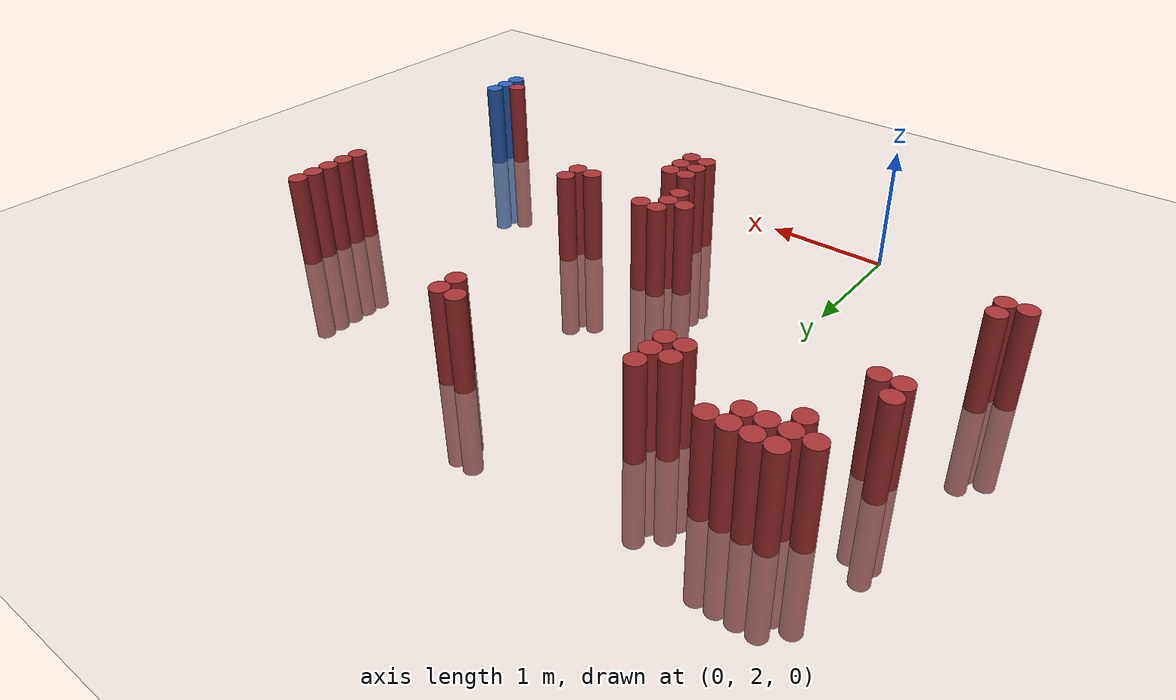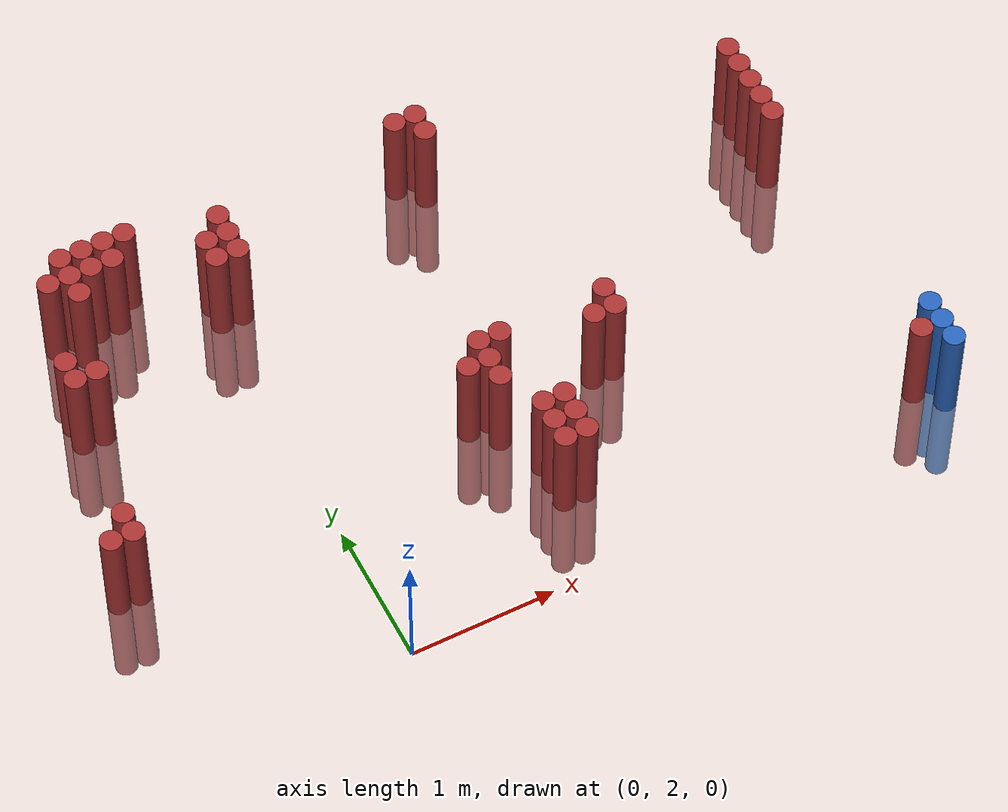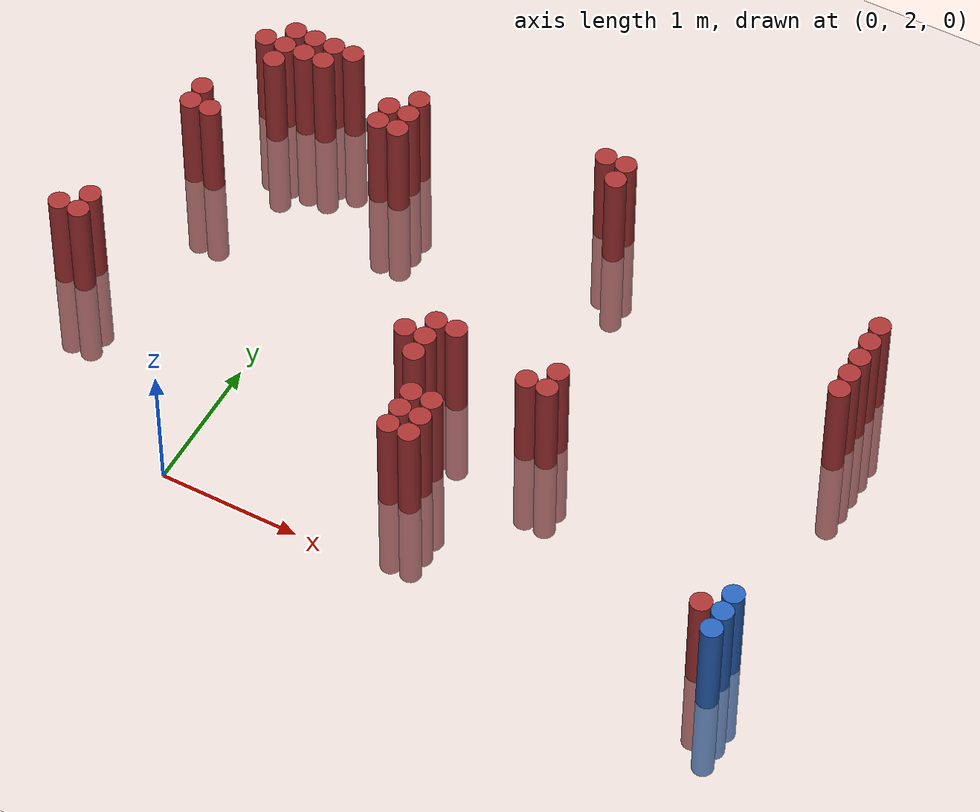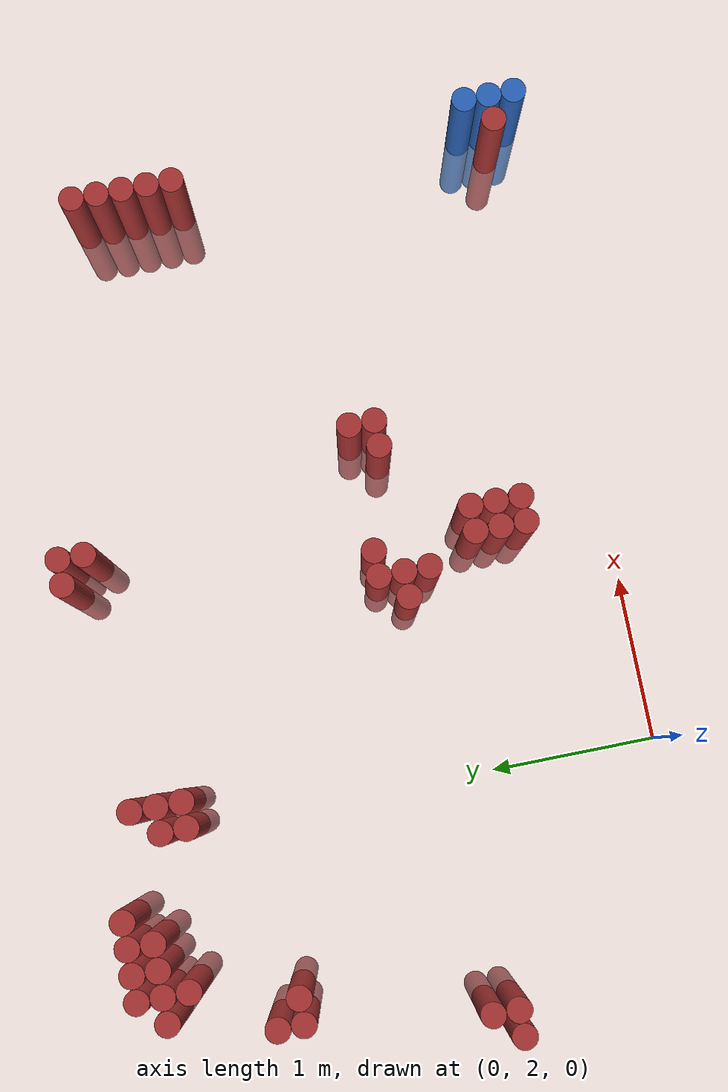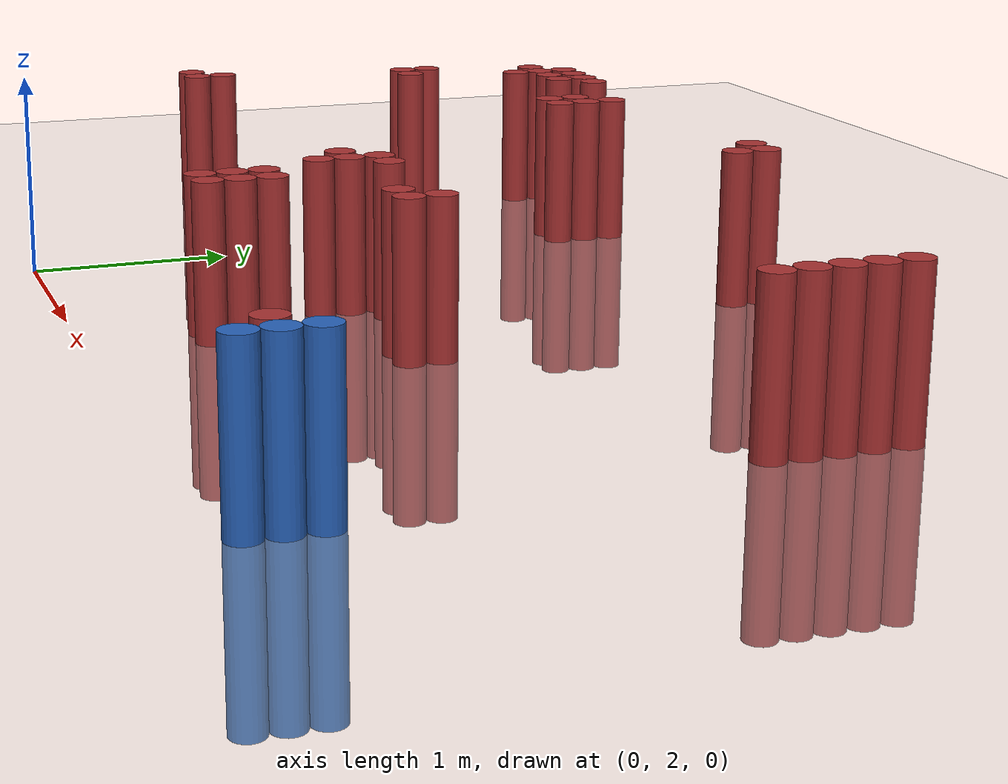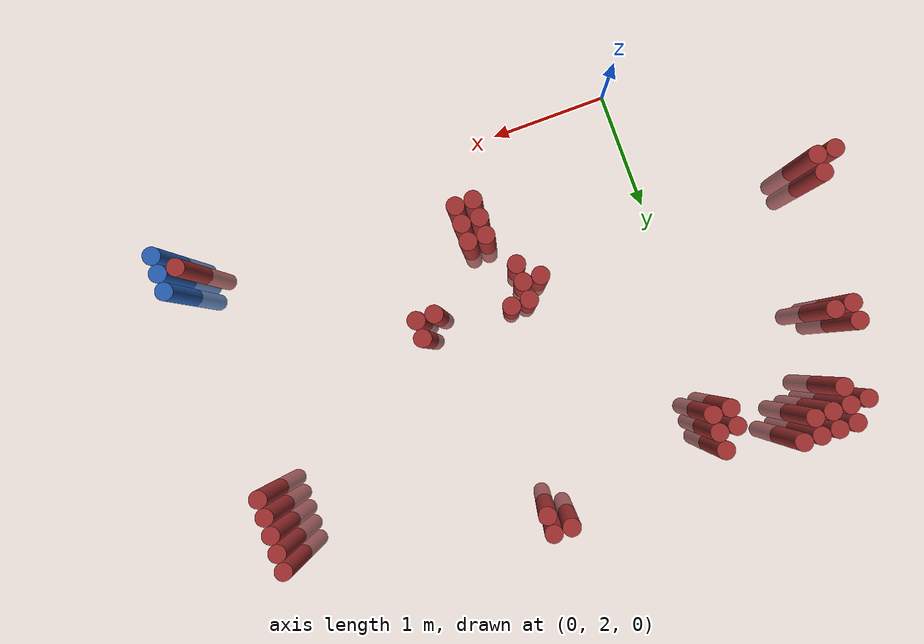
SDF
<sdf version="1.6">
 <world name="default">
  <model name="ground_plane">
   <static>1</static>
   <link name="link">
    <collision name="collision">
     <geometry><plane><normal>0 0 1</normal><size>100 100</size></plane></geometry>
     <surface><friction><ode><mu>100</mu><mu2>50</mu2></ode></friction></surface>
    </collision>
    <visual name="visual">
     <cast_shadows>0</cast_shadows>
     <geometry><plane><normal>0 0 1</normal><size>100 100</size></plane></geometry>
     <material>
      <script><uri>file://media/materials/scripts/gazebo.material</uri><name>Gazebo/Grey</name></script>
     </material>
    </visual>
   </link>
  </model>
  <model name="unit_cylinder_142">
   <static>1</static>
   <pose>3.925000 2.125000 0.000000 0.000000 0.000000 0.000000</pose>
   <link name="link">
    <inertial>
     <mass>1</mass>
     <inertia><ixx>0.145833</ixx><ixy>0</ixy><ixz>0</ixz><iyy>0.145833</iyy><iyz>0</iyz><izz>0.125</izz></inertia>
    </inertial>
    <collision name="collision">
     <geometry><cylinder><radius>0.075000</radius><length>1.5</length></cylinder></geometry>
    </collision>
    <visual name="visual">
     <geometry><cylinder><radius>0.075000</radius><length>1.5</length></cylinder></geometry>
     <material>
      <ambient>0.152000 0.379000 0.720000 1</ambient>
      <diffuse>0.152000 0.379000 0.720000 1</diffuse>
     </material>
     <material>
      <script><name>Gazebo/Grey</name><uri>file://media/materials/scripts/gazebo.material</uri></script>
     </material>
    </visual>
   </link>
  </model>
  <model name="unit_cylinder_144">
   <static>1</static>
   <pose>3.925000 2.275000 0.000000 0.000000 0.000000 0.000000</pose>
   <link name="link">
    <inertial>
     <mass>1</mass>
     <inertia><ixx>0.145833</ixx><ixy>0</ixy><ixz>0</ixz><iyy>0.145833</iyy><iyz>0</iyz><izz>0.125</izz></inertia>
    </inertial>
    <collision name="collision">
     <geometry><cylinder><radius>0.075000</radius><length>1.5</length></cylinder></geometry>
    </collision>
    <visual name="visual">
     <geometry><cylinder><radius>0.075000</radius><length>1.5</length></cylinder></geometry>
     <material>
      <ambient>0.152000 0.379000 0.720000 1</ambient>
      <diffuse>0.152000 0.379000 0.720000 1</diffuse>
     </material>
     <material>
      <script><name>Gazebo/Grey</name><uri>file://media/materials/scripts/gazebo.material</uri></script>
     </material>
    </visual>
   </link>
  </model>
  <model name="unit_cylinder_146">
   <static>1</static>
   <pose>3.925000 2.425000 0.000000 0.000000 0.000000 0.000000</pose>
   <link name="link">
    <inertial>
     <mass>1</mass>
     <inertia><ixx>0.145833</ixx><ixy>0</ixy><ixz>0</ixz><iyy>0.145833</iyy><iyz>0</iyz><izz>0.125</izz></inertia>
    </inertial>
    <collision name="collision">
     <geometry><cylinder><radius>0.075000</radius><length>1.5</length></cylinder></geometry>
    </collision>
    <visual name="visual">
     <geometry><cylinder><radius>0.075000</radius><length>1.5</length></cylinder></geometry>
     <material>
      <ambient>0.152000 0.379000 0.720000 1</ambient>
      <diffuse>0.152000 0.379000 0.720000 1</diffuse>
     </material>
     <material>
      <script><name>Gazebo/Grey</name><uri>file://media/materials/scripts/gazebo.material</uri></script>
     </material>
    </visual>
   </link>
  </model>
  <model name="unit_cylinder_287">
   <static>1</static>
   <pose>-1.475000 3.175000 0.000000 0.000000 0.000000 0.000000</pose>
   <link name="link">
    <inertial>
     <mass>1</mass>
     <inertia><ixx>0.145833</ixx><ixy>0</ixy><ixz>0</ixz><iyy>0.145833</iyy><iyz>0</iyz><izz>0.125</izz></inertia>
    </inertial>
    <collision name="collision">
     <geometry><cylinder><radius>0.075000</radius><length>1.5</length></cylinder></geometry>
    </collision>
    <visual name="visual">
     <geometry><cylinder><radius>0.075000</radius><length>1.5</length></cylinder></geometry>
     <material>
      <ambient>0.648000 0.192000 0.192000 1</ambient>
      <diffuse>0.648000 0.192000 0.192000 1</diffuse>
     </material>
     <material>
      <script><name>Gazebo/Grey</name><uri>file://media/materials/scripts/gazebo.material</uri></script>
     </material>
    </visual>
   </link>
  </model>
  <model name="unit_cylinder_289">
   <static>1</static>
   <pose>-1.325000 3.175000 0.000000 0.000000 0.000000 0.000000</pose>
   <link name="link">
    <inertial>
     <mass>1</mass>
     <inertia><ixx>0.145833</ixx><ixy>0</ixy><ixz>0</ixz><iyy>0.145833</iyy><iyz>0</iyz><izz>0.125</izz></inertia>
    </inertial>
    <collision name="collision">
     <geometry><cylinder><radius>0.075000</radius><length>1.5</length></cylinder></geometry>
    </collision>
    <visual name="visual">
     <geometry><cylinder><radius>0.075000</radius><length>1.5</length></cylinder></geometry>
     <material>
      <ambient>0.648000 0.192000 0.192000 1</ambient>
      <diffuse>0.648000 0.192000 0.192000 1</diffuse>
     </material>
     <material>
      <script><name>Gazebo/Grey</name><uri>file://media/materials/scripts/gazebo.material</uri></script>
     </material>
    </visual>
   </link>
  </model>
  <model name="unit_cylinder_290">
   <static>1</static>
   <pose>-1.325000 3.325000 0.000000 0.000000 0.000000 0.000000</pose>
   <link name="link">
    <inertial>
     <mass>1</mass>
     <inertia><ixx>0.145833</ixx><ixy>0</ixy><ixz>0</ixz><iyy>0.145833</iyy><iyz>0</iyz><izz>0.125</izz></inertia>
    </inertial>
    <collision name="collision">
     <geometry><cylinder><radius>0.075000</radius><length>1.5</length></cylinder></geometry>
    </collision>
    <visual name="visual">
     <geometry><cylinder><radius>0.075000</radius><length>1.5</length></cylinder></geometry>
     <material>
      <ambient>0.648000 0.192000 0.192000 1</ambient>
      <diffuse>0.648000 0.192000 0.192000 1</diffuse>
     </material>
     <material>
      <script><name>Gazebo/Grey</name><uri>file://media/materials/scripts/gazebo.material</uri></script>
     </material>
    </visual>
   </link>
  </model>
  <model name="unit_cylinder_293">
   <static>1</static>
   <pose>-1.175000 4.375000 0.000000 0.000000 0.000000 0.000000</pose>
   <link name="link">
    <inertial>
     <mass>1</mass>
     <inertia><ixx>0.145833</ixx><ixy>0</ixy><ixz>0</ixz><iyy>0.145833</iyy><iyz>0</iyz><izz>0.125</izz></inertia>
    </inertial>
    <collision name="collision">
     <geometry><cylinder><radius>0.075000</radius><length>1.5</length></cylinder></geometry>
    </collision>
    <visual name="visual">
     <geometry><cylinder><radius>0.075000</radius><length>1.5</length></cylinder></geometry>
     <material>
      <ambient>0.648000 0.192000 0.192000 1</ambient>
      <diffuse>0.648000 0.192000 0.192000 1</diffuse>
     </material>
     <material>
      <script><name>Gazebo/Grey</name><uri>file://media/materials/scripts/gazebo.material</uri></script>
     </material>
    </visual>
   </link>
  </model>
  <model name="unit_cylinder_294">
   <static>1</static>
   <pose>-1.175000 4.525000 0.000000 0.000000 0.000000 0.000000</pose>
   <link name="link">
    <inertial>
     <mass>1</mass>
     <inertia><ixx>0.145833</ixx><ixy>0</ixy><ixz>0</ixz><iyy>0.145833</iyy><iyz>0</iyz><izz>0.125</izz></inertia>
    </inertial>
    <collision name="collision">
     <geometry><cylinder><radius>0.075000</radius><length>1.5</length></cylinder></geometry>
    </collision>
    <visual name="visual">
     <geometry><cylinder><radius>0.075000</radius><length>1.5</length></cylinder></geometry>
     <material>
      <ambient>0.648000 0.192000 0.192000 1</ambient>
      <diffuse>0.648000 0.192000 0.192000 1</diffuse>
     </material>
     <material>
      <script><name>Gazebo/Grey</name><uri>file://media/materials/scripts/gazebo.material</uri></script>
     </material>
    </visual>
   </link>
  </model>
  <model name="unit_cylinder_298">
   <static>1</static>
   <pose>-1.025000 4.375000 0.000000 0.000000 0.000000 0.000000</pose>
   <link name="link">
    <inertial>
     <mass>1</mass>
     <inertia><ixx>0.145833</ixx><ixy>0</ixy><ixz>0</ixz><iyy>0.145833</iyy><iyz>0</iyz><izz>0.125</izz></inertia>
    </inertial>
    <collision name="collision">
     <geometry><cylinder><radius>0.075000</radius><length>1.5</length></cylinder></geometry>
    </collision>
    <visual name="visual">
     <geometry><cylinder><radius>0.075000</radius><length>1.5</length></cylinder></geometry>
     <material>
      <ambient>0.648000 0.192000 0.192000 1</ambient>
      <diffuse>0.648000 0.192000 0.192000 1</diffuse>
     </material>
     <material>
      <script><name>Gazebo/Grey</name><uri>file://media/materials/scripts/gazebo.material</uri></script>
     </material>
    </visual>
   </link>
  </model>
  <model name="unit_cylinder_299">
   <static>1</static>
   <pose>-1.025000 5.125000 0.000000 0.000000 0.000000 0.000000</pose>
   <link name="link">
    <inertial>
     <mass>1</mass>
     <inertia><ixx>0.145833</ixx><ixy>0</ixy><ixz>0</ixz><iyy>0.145833</iyy><iyz>0</iyz><izz>0.125</izz></inertia>
    </inertial>
    <collision name="collision">
     <geometry><cylinder><radius>0.075000</radius><length>1.5</length></cylinder></geometry>
    </collision>
    <visual name="visual">
     <geometry><cylinder><radius>0.075000</radius><length>1.5</length></cylinder></geometry>
     <material>
      <ambient>0.648000 0.192000 0.192000 1</ambient>
      <diffuse>0.648000 0.192000 0.192000 1</diffuse>
     </material>
     <material>
      <script><name>Gazebo/Grey</name><uri>file://media/materials/scripts/gazebo.material</uri></script>
     </material>
    </visual>
   </link>
  </model>
  <model name="unit_cylinder_303">
   <static>1</static>
   <pose>-0.875000 4.975000 0.000000 0.000000 0.000000 0.000000</pose>
   <link name="link">
    <inertial>
     <mass>1</mass>
     <inertia><ixx>0.145833</ixx><ixy>0</ixy><ixz>0</ixz><iyy>0.145833</iyy><iyz>0</iyz><izz>0.125</izz></inertia>
    </inertial>
    <collision name="collision">
     <geometry><cylinder><radius>0.075000</radius><length>1.5</length></cylinder></geometry>
    </collision>
    <visual name="visual">
     <geometry><cylinder><radius>0.075000</radius><length>1.5</length></cylinder></geometry>
     <material>
      <ambient>0.648000 0.192000 0.192000 1</ambient>
      <diffuse>0.648000 0.192000 0.192000 1</diffuse>
     </material>
     <material>
      <script><name>Gazebo/Grey</name><uri>file://media/materials/scripts/gazebo.material</uri></script>
     </material>
    </visual>
   </link>
  </model>
  <model name="unit_cylinder_304">
   <static>1</static>
   <pose>-0.875000 5.125000 0.000000 0.000000 0.000000 0.000000</pose>
   <link name="link">
    <inertial>
     <mass>1</mass>
     <inertia><ixx>0.145833</ixx><ixy>0</ixy><ixz>0</ixz><iyy>0.145833</iyy><iyz>0</iyz><izz>0.125</izz></inertia>
    </inertial>
    <collision name="collision">
     <geometry><cylinder><radius>0.075000</radius><length>1.5</length></cylinder></geometry>
    </collision>
    <visual name="visual">
     <geometry><cylinder><radius>0.075000</radius><length>1.5</length></cylinder></geometry>
     <material>
      <ambient>0.648000 0.192000 0.192000 1</ambient>
      <diffuse>0.648000 0.192000 0.192000 1</diffuse>
     </material>
     <material>
      <script><name>Gazebo/Grey</name><uri>file://media/materials/scripts/gazebo.material</uri></script>
     </material>
    </visual>
   </link>
  </model>
  <model name="unit_cylinder_305">
   <static>1</static>
   <pose>-0.875000 5.275000 0.000000 0.000000 0.000000 0.000000</pose>
   <link name="link">
    <inertial>
     <mass>1</mass>
     <inertia><ixx>0.145833</ixx><ixy>0</ixy><ixz>0</ixz><iyy>0.145833</iyy><iyz>0</iyz><izz>0.125</izz></inertia>
    </inertial>
    <collision name="collision">
     <geometry><cylinder><radius>0.075000</radius><length>1.5</length></cylinder></geometry>
    </collision>
    <visual name="visual">
     <geometry><cylinder><radius>0.075000</radius><length>1.5</length></cylinder></geometry>
     <material>
      <ambient>0.648000 0.192000 0.192000 1</ambient>
      <diffuse>0.648000 0.192000 0.192000 1</diffuse>
     </material>
     <material>
      <script><name>Gazebo/Grey</name><uri>file://media/materials/scripts/gazebo.material</uri></script>
     </material>
    </visual>
   </link>
  </model>
  <model name="unit_cylinder_306">
   <static>1</static>
   <pose>-0.725000 5.125000 0.000000 0.000000 0.000000 0.000000</pose>
   <link name="link">
    <inertial>
     <mass>1</mass>
     <inertia><ixx>0.145833</ixx><ixy>0</ixy><ixz>0</ixz><iyy>0.145833</iyy><iyz>0</iyz><izz>0.125</izz></inertia>
    </inertial>
    <collision name="collision">
     <geometry><cylinder><radius>0.075000</radius><length>1.5</length></cylinder></geometry>
    </collision>
    <visual name="visual">
     <geometry><cylinder><radius>0.075000</radius><length>1.5</length></cylinder></geometry>
     <material>
      <ambient>0.648000 0.192000 0.192000 1</ambient>
      <diffuse>0.648000 0.192000 0.192000 1</diffuse>
     </material>
     <material>
      <script><name>Gazebo/Grey</name><uri>file://media/materials/scripts/gazebo.material</uri></script>
     </material>
    </visual>
   </link>
  </model>
  <model name="unit_cylinder_307">
   <static>1</static>
   <pose>-0.725000 5.275000 0.000000 0.000000 0.000000 0.000000</pose>
   <link name="link">
    <inertial>
     <mass>1</mass>
     <inertia><ixx>0.145833</ixx><ixy>0</ixy><ixz>0</ixz><iyy>0.145833</iyy><iyz>0</iyz><izz>0.125</izz></inertia>
    </inertial>
    <collision name="collision">
     <geometry><cylinder><radius>0.075000</radius><length>1.5</length></cylinder></geometry>
    </collision>
    <visual name="visual">
     <geometry><cylinder><radius>0.075000</radius><length>1.5</length></cylinder></geometry>
     <material>
      <ambient>0.648000 0.192000 0.192000 1</ambient>
      <diffuse>0.648000 0.192000 0.192000 1</diffuse>
     </material>
     <material>
      <script><name>Gazebo/Grey</name><uri>file://media/materials/scripts/gazebo.material</uri></script>
     </material>
    </visual>
   </link>
  </model>
  <model name="unit_cylinder_308">
   <static>1</static>
   <pose>-0.575000 5.125000 0.000000 0.000000 0.000000 0.000000</pose>
   <link name="link">
    <inertial>
     <mass>1</mass>
     <inertia><ixx>0.145833</ixx><ixy>0</ixy><ixz>0</ixz><iyy>0.145833</iyy><iyz>0</iyz><izz>0.125</izz></inertia>
    </inertial>
    <collision name="collision">
     <geometry><cylinder><radius>0.075000</radius><length>1.5</length></cylinder></geometry>
    </collision>
    <visual name="visual">
     <geometry><cylinder><radius>0.075000</radius><length>1.5</length></cylinder></geometry>
     <material>
      <ambient>0.648000 0.192000 0.192000 1</ambient>
      <diffuse>0.648000 0.192000 0.192000 1</diffuse>
     </material>
     <material>
      <script><name>Gazebo/Grey</name><uri>file://media/materials/scripts/gazebo.material</uri></script>
     </material>
    </visual>
   </link>
  </model>
  <model name="unit_cylinder_309">
   <static>1</static>
   <pose>-0.575000 5.275000 0.000000 0.000000 0.000000 0.000000</pose>
   <link name="link">
    <inertial>
     <mass>1</mass>
     <inertia><ixx>0.145833</ixx><ixy>0</ixy><ixz>0</ixz><iyy>0.145833</iyy><iyz>0</iyz><izz>0.125</izz></inertia>
    </inertial>
    <collision name="collision">
     <geometry><cylinder><radius>0.075000</radius><length>1.5</length></cylinder></geometry>
    </collision>
    <visual name="visual">
     <geometry><cylinder><radius>0.075000</radius><length>1.5</length></cylinder></geometry>
     <material>
      <ambient>0.648000 0.192000 0.192000 1</ambient>
      <diffuse>0.648000 0.192000 0.192000 1</diffuse>
     </material>
     <material>
      <script><name>Gazebo/Grey</name><uri>file://media/materials/scripts/gazebo.material</uri></script>
     </material>
    </visual>
   </link>
  </model>
  <model name="unit_cylinder_310">
   <static>1</static>
   <pose>-0.425000 5.275000 0.000000 0.000000 0.000000 0.000000</pose>
   <link name="link">
    <inertial>
     <mass>1</mass>
     <inertia><ixx>0.145833</ixx><ixy>0</ixy><ixz>0</ixz><iyy>0.145833</iyy><iyz>0</iyz><izz>0.125</izz></inertia>
    </inertial>
    <collision name="collision">
     <geometry><cylinder><radius>0.075000</radius><length>1.5</length></cylinder></geometry>
    </collision>
    <visual name="visual">
     <geometry><cylinder><radius>0.075000</radius><length>1.5</length></cylinder></geometry>
     <material>
      <ambient>0.648000 0.192000 0.192000 1</ambient>
      <diffuse>0.648000 0.192000 0.192000 1</diffuse>
     </material>
     <material>
      <script><name>Gazebo/Grey</name><uri>file://media/materials/scripts/gazebo.material</uri></script>
     </material>
    </visual>
   </link>
  </model>
  <model name="unit_cylinder_311">
   <static>1</static>
   <pose>0.025000 4.825000 0.000000 0.000000 0.000000 0.000000</pose>
   <link name="link">
    <inertial>
     <mass>1</mass>
     <inertia><ixx>0.145833</ixx><ixy>0</ixy><ixz>0</ixz><iyy>0.145833</iyy><iyz>0</iyz><izz>0.125</izz></inertia>
    </inertial>
    <collision name="collision">
     <geometry><cylinder><radius>0.075000</radius><length>1.5</length></cylinder></geometry>
    </collision>
    <visual name="visual">
     <geometry><cylinder><radius>0.075000</radius><length>1.5</length></cylinder></geometry>
     <material>
      <ambient>0.648000 0.192000 0.192000 1</ambient>
      <diffuse>0.648000 0.192000 0.192000 1</diffuse>
     </material>
     <material>
      <script><name>Gazebo/Grey</name><uri>file://media/materials/scripts/gazebo.material</uri></script>
     </material>
    </visual>
   </link>
  </model>
  <model name="unit_cylinder_312">
   <static>1</static>
   <pose>0.025000 4.975000 0.000000 0.000000 0.000000 0.000000</pose>
   <link name="link">
    <inertial>
     <mass>1</mass>
     <inertia><ixx>0.145833</ixx><ixy>0</ixy><ixz>0</ixz><iyy>0.145833</iyy><iyz>0</iyz><izz>0.125</izz></inertia>
    </inertial>
    <collision name="collision">
     <geometry><cylinder><radius>0.075000</radius><length>1.5</length></cylinder></geometry>
    </collision>
    <visual name="visual">
     <geometry><cylinder><radius>0.075000</radius><length>1.5</length></cylinder></geometry>
     <material>
      <ambient>0.648000 0.192000 0.192000 1</ambient>
      <diffuse>0.648000 0.192000 0.192000 1</diffuse>
     </material>
     <material>
      <script><name>Gazebo/Grey</name><uri>file://media/materials/scripts/gazebo.material</uri></script>
     </material>
    </visual>
   </link>
  </model>
  <model name="unit_cylinder_313">
   <static>1</static>
   <pose>0.175000 4.825000 0.000000 0.000000 0.000000 0.000000</pose>
   <link name="link">
    <inertial>
     <mass>1</mass>
     <inertia><ixx>0.145833</ixx><ixy>0</ixy><ixz>0</ixz><iyy>0.145833</iyy><iyz>0</iyz><izz>0.125</izz></inertia>
    </inertial>
    <collision name="collision">
     <geometry><cylinder><radius>0.075000</radius><length>1.5</length></cylinder></geometry>
    </collision>
    <visual name="visual">
     <geometry><cylinder><radius>0.075000</radius><length>1.5</length></cylinder></geometry>
     <material>
      <ambient>0.648000 0.192000 0.192000 1</ambient>
      <diffuse>0.648000 0.192000 0.192000 1</diffuse>
     </material>
     <material>
      <script><name>Gazebo/Grey</name><uri>file://media/materials/scripts/gazebo.material</uri></script>
     </material>
    </visual>
   </link>
  </model>
  <model name="unit_cylinder_314">
   <static>1</static>
   <pose>0.175000 4.975000 0.000000 0.000000 0.000000 0.000000</pose>
   <link name="link">
    <inertial>
     <mass>1</mass>
     <inertia><ixx>0.145833</ixx><ixy>0</ixy><ixz>0</ixz><iyy>0.145833</iyy><iyz>0</iyz><izz>0.125</izz></inertia>
    </inertial>
    <collision name="collision">
     <geometry><cylinder><radius>0.075000</radius><length>1.5</length></cylinder></geometry>
    </collision>
    <visual name="visual">
     <geometry><cylinder><radius>0.075000</radius><length>1.5</length></cylinder></geometry>
     <material>
      <ambient>0.648000 0.192000 0.192000 1</ambient>
      <diffuse>0.648000 0.192000 0.192000 1</diffuse>
     </material>
     <material>
      <script><name>Gazebo/Grey</name><uri>file://media/materials/scripts/gazebo.material</uri></script>
     </material>
    </visual>
   </link>
  </model>
  <model name="unit_cylinder_315">
   <static>1</static>
   <pose>0.175000 5.125000 0.000000 0.000000 0.000000 0.000000</pose>
   <link name="link">
    <inertial>
     <mass>1</mass>
     <inertia><ixx>0.145833</ixx><ixy>0</ixy><ixz>0</ixz><iyy>0.145833</iyy><iyz>0</iyz><izz>0.125</izz></inertia>
    </inertial>
    <collision name="collision">
     <geometry><cylinder><radius>0.075000</radius><length>1.5</length></cylinder></geometry>
    </collision>
    <visual name="visual">
     <geometry><cylinder><radius>0.075000</radius><length>1.5</length></cylinder></geometry>
     <material>
      <ambient>0.648000 0.192000 0.192000 1</ambient>
      <diffuse>0.648000 0.192000 0.192000 1</diffuse>
     </material>
     <material>
      <script><name>Gazebo/Grey</name><uri>file://media/materials/scripts/gazebo.material</uri></script>
     </material>
    </visual>
   </link>
  </model>
  <model name="unit_cylinder_321">
   <static>1</static>
   <pose>1.075000 3.325000 0.000000 0.000000 0.000000 0.000000</pose>
   <link name="link">
    <inertial>
     <mass>1</mass>
     <inertia><ixx>0.145833</ixx><ixy>0</ixy><ixz>0</ixz><iyy>0.145833</iyy><iyz>0</iyz><izz>0.125</izz></inertia>
    </inertial>
    <collision name="collision">
     <geometry><cylinder><radius>0.075000</radius><length>1.5</length></cylinder></geometry>
    </collision>
    <visual name="visual">
     <geometry><cylinder><radius>0.075000</radius><length>1.5</length></cylinder></geometry>
     <material>
      <ambient>0.648000 0.192000 0.192000 1</ambient>
      <diffuse>0.648000 0.192000 0.192000 1</diffuse>
     </material>
     <material>
      <script><name>Gazebo/Grey</name><uri>file://media/materials/scripts/gazebo.material</uri></script>
     </material>
    </visual>
   </link>
  </model>
  <model name="unit_cylinder_325">
   <static>1</static>
   <pose>1.225000 3.175000 0.000000 0.000000 0.000000 0.000000</pose>
   <link name="link">
    <inertial>
     <mass>1</mass>
     <inertia><ixx>0.145833</ixx><ixy>0</ixy><ixz>0</ixz><iyy>0.145833</iyy><iyz>0</iyz><izz>0.125</izz></inertia>
    </inertial>
    <collision name="collision">
     <geometry><cylinder><radius>0.075000</radius><length>1.5</length></cylinder></geometry>
    </collision>
    <visual name="visual">
     <geometry><cylinder><radius>0.075000</radius><length>1.5</length></cylinder></geometry>
     <material>
      <ambient>0.648000 0.192000 0.192000 1</ambient>
      <diffuse>0.648000 0.192000 0.192000 1</diffuse>
     </material>
     <material>
      <script><name>Gazebo/Grey</name><uri>file://media/materials/scripts/gazebo.material</uri></script>
     </material>
    </visual>
   </link>
  </model>
  <model name="unit_cylinder_326">
   <static>1</static>
   <pose>1.225000 3.325000 0.000000 0.000000 0.000000 0.000000</pose>
   <link name="link">
    <inertial>
     <mass>1</mass>
     <inertia><ixx>0.145833</ixx><ixy>0</ixy><ixz>0</ixz><iyy>0.145833</iyy><iyz>0</iyz><izz>0.125</izz></inertia>
    </inertial>
    <collision name="collision">
     <geometry><cylinder><radius>0.075000</radius><length>1.5</length></cylinder></geometry>
    </collision>
    <visual name="visual">
     <geometry><cylinder><radius>0.075000</radius><length>1.5</length></cylinder></geometry>
     <material>
      <ambient>0.648000 0.192000 0.192000 1</ambient>
      <diffuse>0.648000 0.192000 0.192000 1</diffuse>
     </material>
     <material>
      <script><name>Gazebo/Grey</name><uri>file://media/materials/scripts/gazebo.material</uri></script>
     </material>
    </visual>
   </link>
  </model>
  <model name="unit_cylinder_327">
   <static>1</static>
   <pose>1.225000 3.475000 0.000000 0.000000 0.000000 0.000000</pose>
   <link name="link">
    <inertial>
     <mass>1</mass>
     <inertia><ixx>0.145833</ixx><ixy>0</ixy><ixz>0</ixz><iyy>0.145833</iyy><iyz>0</iyz><izz>0.125</izz></inertia>
    </inertial>
    <collision name="collision">
     <geometry><cylinder><radius>0.075000</radius><length>1.5</length></cylinder></geometry>
    </collision>
    <visual name="visual">
     <geometry><cylinder><radius>0.075000</radius><length>1.5</length></cylinder></geometry>
     <material>
      <ambient>0.648000 0.192000 0.192000 1</ambient>
      <diffuse>0.648000 0.192000 0.192000 1</diffuse>
     </material>
     <material>
      <script><name>Gazebo/Grey</name><uri>file://media/materials/scripts/gazebo.material</uri></script>
     </material>
    </visual>
   </link>
  </model>
  <model name="unit_cylinder_333">
   <static>1</static>
   <pose>1.375000 2.575000 0.000000 0.000000 0.000000 0.000000</pose>
   <link name="link">
    <inertial>
     <mass>1</mass>
     <inertia><ixx>0.145833</ixx><ixy>0</ixy><ixz>0</ixz><iyy>0.145833</iyy><iyz>0</iyz><izz>0.125</izz></inertia>
    </inertial>
    <collision name="collision">
     <geometry><cylinder><radius>0.075000</radius><length>1.5</length></cylinder></geometry>
    </collision>
    <visual name="visual">
     <geometry><cylinder><radius>0.075000</radius><length>1.5</length></cylinder></geometry>
     <material>
      <ambient>0.648000 0.192000 0.192000 1</ambient>
      <diffuse>0.648000 0.192000 0.192000 1</diffuse>
     </material>
     <material>
      <script><name>Gazebo/Grey</name><uri>file://media/materials/scripts/gazebo.material</uri></script>
     </material>
    </visual>
   </link>
  </model>
  <model name="unit_cylinder_334">
   <static>1</static>
   <pose>1.375000 2.725000 0.000000 0.000000 0.000000 0.000000</pose>
   <link name="link">
    <inertial>
     <mass>1</mass>
     <inertia><ixx>0.145833</ixx><ixy>0</ixy><ixz>0</ixz><iyy>0.145833</iyy><iyz>0</iyz><izz>0.125</izz></inertia>
    </inertial>
    <collision name="collision">
     <geometry><cylinder><radius>0.075000</radius><length>1.5</length></cylinder></geometry>
    </collision>
    <visual name="visual">
     <geometry><cylinder><radius>0.075000</radius><length>1.5</length></cylinder></geometry>
     <material>
      <ambient>0.648000 0.192000 0.192000 1</ambient>
      <diffuse>0.648000 0.192000 0.192000 1</diffuse>
     </material>
     <material>
      <script><name>Gazebo/Grey</name><uri>file://media/materials/scripts/gazebo.material</uri></script>
     </material>
    </visual>
   </link>
  </model>
  <model name="unit_cylinder_335">
   <static>1</static>
   <pose>1.375000 2.875000 0.000000 0.000000 0.000000 0.000000</pose>
   <link name="link">
    <inertial>
     <mass>1</mass>
     <inertia><ixx>0.145833</ixx><ixy>0</ixy><ixz>0</ixz><iyy>0.145833</iyy><iyz>0</iyz><izz>0.125</izz></inertia>
    </inertial>
    <collision name="collision">
     <geometry><cylinder><radius>0.075000</radius><length>1.5</length></cylinder></geometry>
    </collision>
    <visual name="visual">
     <geometry><cylinder><radius>0.075000</radius><length>1.5</length></cylinder></geometry>
     <material>
      <ambient>0.648000 0.192000 0.192000 1</ambient>
      <diffuse>0.648000 0.192000 0.192000 1</diffuse>
     </material>
     <material>
      <script><name>Gazebo/Grey</name><uri>file://media/materials/scripts/gazebo.material</uri></script>
     </material>
    </visual>
   </link>
  </model>
  <model name="unit_cylinder_336">
   <static>1</static>
   <pose>1.375000 3.475000 0.000000 0.000000 0.000000 0.000000</pose>
   <link name="link">
    <inertial>
     <mass>1</mass>
     <inertia><ixx>0.145833</ixx><ixy>0</ixy><ixz>0</ixz><iyy>0.145833</iyy><iyz>0</iyz><izz>0.125</izz></inertia>
    </inertial>
    <collision name="collision">
     <geometry><cylinder><radius>0.075000</radius><length>1.5</length></cylinder></geometry>
    </collision>
    <visual name="visual">
     <geometry><cylinder><radius>0.075000</radius><length>1.5</length></cylinder></geometry>
     <material>
      <ambient>0.648000 0.192000 0.192000 1</ambient>
      <diffuse>0.648000 0.192000 0.192000 1</diffuse>
     </material>
     <material>
      <script><name>Gazebo/Grey</name><uri>file://media/materials/scripts/gazebo.material</uri></script>
     </material>
    </visual>
   </link>
  </model>
  <model name="unit_cylinder_341">
   <static>1</static>
   <pose>1.525000 2.575000 0.000000 0.000000 0.000000 0.000000</pose>
   <link name="link">
    <inertial>
     <mass>1</mass>
     <inertia><ixx>0.145833</ixx><ixy>0</ixy><ixz>0</ixz><iyy>0.145833</iyy><iyz>0</iyz><izz>0.125</izz></inertia>
    </inertial>
    <collision name="collision">
     <geometry><cylinder><radius>0.075000</radius><length>1.5</length></cylinder></geometry>
    </collision>
    <visual name="visual">
     <geometry><cylinder><radius>0.075000</radius><length>1.5</length></cylinder></geometry>
     <material>
      <ambient>0.648000 0.192000 0.192000 1</ambient>
      <diffuse>0.648000 0.192000 0.192000 1</diffuse>
     </material>
     <material>
      <script><name>Gazebo/Grey</name><uri>file://media/materials/scripts/gazebo.material</uri></script>
     </material>
    </visual>
   </link>
  </model>
  <model name="unit_cylinder_342">
   <static>1</static>
   <pose>1.525000 2.725000 0.000000 0.000000 0.000000 0.000000</pose>
   <link name="link">
    <inertial>
     <mass>1</mass>
     <inertia><ixx>0.145833</ixx><ixy>0</ixy><ixz>0</ixz><iyy>0.145833</iyy><iyz>0</iyz><izz>0.125</izz></inertia>
    </inertial>
    <collision name="collision">
     <geometry><cylinder><radius>0.075000</radius><length>1.5</length></cylinder></geometry>
    </collision>
    <visual name="visual">
     <geometry><cylinder><radius>0.075000</radius><length>1.5</length></cylinder></geometry>
     <material>
      <ambient>0.648000 0.192000 0.192000 1</ambient>
      <diffuse>0.648000 0.192000 0.192000 1</diffuse>
     </material>
     <material>
      <script><name>Gazebo/Grey</name><uri>file://media/materials/scripts/gazebo.material</uri></script>
     </material>
    </visual>
   </link>
  </model>
  <model name="unit_cylinder_343">
   <static>1</static>
   <pose>1.525000 2.875000 0.000000 0.000000 0.000000 0.000000</pose>
   <link name="link">
    <inertial>
     <mass>1</mass>
     <inertia><ixx>0.145833</ixx><ixy>0</ixy><ixz>0</ixz><iyy>0.145833</iyy><iyz>0</iyz><izz>0.125</izz></inertia>
    </inertial>
    <collision name="collision">
     <geometry><cylinder><radius>0.075000</radius><length>1.5</length></cylinder></geometry>
    </collision>
    <visual name="visual">
     <geometry><cylinder><radius>0.075000</radius><length>1.5</length></cylinder></geometry>
     <material>
      <ambient>0.648000 0.192000 0.192000 1</ambient>
      <diffuse>0.648000 0.192000 0.192000 1</diffuse>
     </material>
     <material>
      <script><name>Gazebo/Grey</name><uri>file://media/materials/scripts/gazebo.material</uri></script>
     </material>
    </visual>
   </link>
  </model>
  <model name="unit_cylinder_344">
   <static>1</static>
   <pose>1.525000 5.275000 0.000000 0.000000 0.000000 0.000000</pose>
   <link name="link">
    <inertial>
     <mass>1</mass>
     <inertia><ixx>0.145833</ixx><ixy>0</ixy><ixz>0</ixz><iyy>0.145833</iyy><iyz>0</iyz><izz>0.125</izz></inertia>
    </inertial>
    <collision name="collision">
     <geometry><cylinder><radius>0.075000</radius><length>1.5</length></cylinder></geometry>
    </collision>
    <visual name="visual">
     <geometry><cylinder><radius>0.075000</radius><length>1.5</length></cylinder></geometry>
     <material>
      <ambient>0.648000 0.192000 0.192000 1</ambient>
      <diffuse>0.648000 0.192000 0.192000 1</diffuse>
     </material>
     <material>
      <script><name>Gazebo/Grey</name><uri>file://media/materials/scripts/gazebo.material</uri></script>
     </material>
    </visual>
   </link>
  </model>
  <model name="unit_cylinder_345">
   <static>1</static>
   <pose>1.675000 5.125000 0.000000 0.000000 0.000000 0.000000</pose>
   <link name="link">
    <inertial>
     <mass>1</mass>
     <inertia><ixx>0.145833</ixx><ixy>0</ixy><ixz>0</ixz><iyy>0.145833</iyy><iyz>0</iyz><izz>0.125</izz></inertia>
    </inertial>
    <collision name="collision">
     <geometry><cylinder><radius>0.075000</radius><length>1.5</length></cylinder></geometry>
    </collision>
    <visual name="visual">
     <geometry><cylinder><radius>0.075000</radius><length>1.5</length></cylinder></geometry>
     <material>
      <ambient>0.648000 0.192000 0.192000 1</ambient>
      <diffuse>0.648000 0.192000 0.192000 1</diffuse>
     </material>
     <material>
      <script><name>Gazebo/Grey</name><uri>file://media/materials/scripts/gazebo.material</uri></script>
     </material>
    </visual>
   </link>
  </model>
  <model name="unit_cylinder_346">
   <static>1</static>
   <pose>1.675000 5.275000 0.000000 0.000000 0.000000 0.000000</pose>
   <link name="link">
    <inertial>
     <mass>1</mass>
     <inertia><ixx>0.145833</ixx><ixy>0</ixy><ixz>0</ixz><iyy>0.145833</iyy><iyz>0</iyz><izz>0.125</izz></inertia>
    </inertial>
    <collision name="collision">
     <geometry><cylinder><radius>0.075000</radius><length>1.5</length></cylinder></geometry>
    </collision>
    <visual name="visual">
     <geometry><cylinder><radius>0.075000</radius><length>1.5</length></cylinder></geometry>
     <material>
      <ambient>0.648000 0.192000 0.192000 1</ambient>
      <diffuse>0.648000 0.192000 0.192000 1</diffuse>
     </material>
     <material>
      <script><name>Gazebo/Grey</name><uri>file://media/materials/scripts/gazebo.material</uri></script>
     </material>
    </visual>
   </link>
  </model>
  <model name="unit_cylinder_353">
   <static>1</static>
   <pose>1.975000 3.325000 0.000000 0.000000 0.000000 0.000000</pose>
   <link name="link">
    <inertial>
     <mass>1</mass>
     <inertia><ixx>0.145833</ixx><ixy>0</ixy><ixz>0</ixz><iyy>0.145833</iyy><iyz>0</iyz><izz>0.125</izz></inertia>
    </inertial>
    <collision name="collision">
     <geometry><cylinder><radius>0.075000</radius><length>1.5</length></cylinder></geometry>
    </collision>
    <visual name="visual">
     <geometry><cylinder><radius>0.075000</radius><length>1.5</length></cylinder></geometry>
     <material>
      <ambient>0.648000 0.192000 0.192000 1</ambient>
      <diffuse>0.648000 0.192000 0.192000 1</diffuse>
     </material>
     <material>
      <script><name>Gazebo/Grey</name><uri>file://media/materials/scripts/gazebo.material</uri></script>
     </material>
    </visual>
   </link>
  </model>
  <model name="unit_cylinder_356">
   <static>1</static>
   <pose>2.125000 3.325000 0.000000 0.000000 0.000000 0.000000</pose>
   <link name="link">
    <inertial>
     <mass>1</mass>
     <inertia><ixx>0.145833</ixx><ixy>0</ixy><ixz>0</ixz><iyy>0.145833</iyy><iyz>0</iyz><izz>0.125</izz></inertia>
    </inertial>
    <collision name="collision">
     <geometry><cylinder><radius>0.075000</radius><length>1.5</length></cylinder></geometry>
    </collision>
    <visual name="visual">
     <geometry><cylinder><radius>0.075000</radius><length>1.5</length></cylinder></geometry>
     <material>
      <ambient>0.648000 0.192000 0.192000 1</ambient>
      <diffuse>0.648000 0.192000 0.192000 1</diffuse>
     </material>
     <material>
      <script><name>Gazebo/Grey</name><uri>file://media/materials/scripts/gazebo.material</uri></script>
     </material>
    </visual>
   </link>
  </model>
  <model name="unit_cylinder_357">
   <static>1</static>
   <pose>2.125000 3.475000 0.000000 0.000000 0.000000 0.000000</pose>
   <link name="link">
    <inertial>
     <mass>1</mass>
     <inertia><ixx>0.145833</ixx><ixy>0</ixy><ixz>0</ixz><iyy>0.145833</iyy><iyz>0</iyz><izz>0.125</izz></inertia>
    </inertial>
    <collision name="collision">
     <geometry><cylinder><radius>0.075000</radius><length>1.5</length></cylinder></geometry>
    </collision>
    <visual name="visual">
     <geometry><cylinder><radius>0.075000</radius><length>1.5</length></cylinder></geometry>
     <material>
      <ambient>0.648000 0.192000 0.192000 1</ambient>
      <diffuse>0.648000 0.192000 0.192000 1</diffuse>
     </material>
     <material>
      <script><name>Gazebo/Grey</name><uri>file://media/materials/scripts/gazebo.material</uri></script>
     </material>
    </visual>
   </link>
  </model>
  <model name="unit_cylinder_386">
   <static>1</static>
   <pose>3.775000 2.275000 0.000000 0.000000 0.000000 0.000000</pose>
   <link name="link">
    <inertial>
     <mass>1</mass>
     <inertia><ixx>0.145833</ixx><ixy>0</ixy><ixz>0</ixz><iyy>0.145833</iyy><iyz>0</iyz><izz>0.125</izz></inertia>
    </inertial>
    <collision name="collision">
     <geometry><cylinder><radius>0.075000</radius><length>1.5</length></cylinder></geometry>
    </collision>
    <visual name="visual">
     <geometry><cylinder><radius>0.075000</radius><length>1.5</length></cylinder></geometry>
     <material>
      <ambient>0.648000 0.192000 0.192000 1</ambient>
      <diffuse>0.648000 0.192000 0.192000 1</diffuse>
     </material>
     <material>
      <script><name>Gazebo/Grey</name><uri>file://media/materials/scripts/gazebo.material</uri></script>
     </material>
    </visual>
   </link>
  </model>
  <model name="unit_cylinder_387">
   <static>1</static>
   <pose>3.775000 4.225000 0.000000 0.000000 0.000000 0.000000</pose>
   <link name="link">
    <inertial>
     <mass>1</mass>
     <inertia><ixx>0.145833</ixx><ixy>0</ixy><ixz>0</ixz><iyy>0.145833</iyy><iyz>0</iyz><izz>0.125</izz></inertia>
    </inertial>
    <collision name="collision">
     <geometry><cylinder><radius>0.075000</radius><length>1.5</length></cylinder></geometry>
    </collision>
    <visual name="visual">
     <geometry><cylinder><radius>0.075000</radius><length>1.5</length></cylinder></geometry>
     <material>
      <ambient>0.648000 0.192000 0.192000 1</ambient>
      <diffuse>0.648000 0.192000 0.192000 1</diffuse>
     </material>
     <material>
      <script><name>Gazebo/Grey</name><uri>file://media/materials/scripts/gazebo.material</uri></script>
     </material>
    </visual>
   </link>
  </model>
  <model name="unit_cylinder_388">
   <static>1</static>
   <pose>3.775000 4.375000 0.000000 0.000000 0.000000 0.000000</pose>
   <link name="link">
    <inertial>
     <mass>1</mass>
     <inertia><ixx>0.145833</ixx><ixy>0</ixy><ixz>0</ixz><iyy>0.145833</iyy><iyz>0</iyz><izz>0.125</izz></inertia>
    </inertial>
    <collision name="collision">
     <geometry><cylinder><radius>0.075000</radius><length>1.5</length></cylinder></geometry>
    </collision>
    <visual name="visual">
     <geometry><cylinder><radius>0.075000</radius><length>1.5</length></cylinder></geometry>
     <material>
      <ambient>0.648000 0.192000 0.192000 1</ambient>
      <diffuse>0.648000 0.192000 0.192000 1</diffuse>
     </material>
     <material>
      <script><name>Gazebo/Grey</name><uri>file://media/materials/scripts/gazebo.material</uri></script>
     </material>
    </visual>
   </link>
  </model>
  <model name="unit_cylinder_389">
   <static>1</static>
   <pose>3.775000 4.525000 0.000000 0.000000 0.000000 0.000000</pose>
   <link name="link">
    <inertial>
     <mass>1</mass>
     <inertia><ixx>0.145833</ixx><ixy>0</ixy><ixz>0</ixz><iyy>0.145833</iyy><iyz>0</iyz><izz>0.125</izz></inertia>
    </inertial>
    <collision name="collision">
     <geometry><cylinder><radius>0.075000</radius><length>1.5</length></cylinder></geometry>
    </collision>
    <visual name="visual">
     <geometry><cylinder><radius>0.075000</radius><length>1.5</length></cylinder></geometry>
     <material>
      <ambient>0.648000 0.192000 0.192000 1</ambient>
      <diffuse>0.648000 0.192000 0.192000 1</diffuse>
     </material>
     <material>
      <script><name>Gazebo/Grey</name><uri>file://media/materials/scripts/gazebo.material</uri></script>
     </material>
    </visual>
   </link>
  </model>
  <model name="unit_cylinder_390">
   <static>1</static>
   <pose>3.775000 4.675000 0.000000 0.000000 0.000000 0.000000</pose>
   <link name="link">
    <inertial>
     <mass>1</mass>
     <inertia><ixx>0.145833</ixx><ixy>0</ixy><ixz>0</ixz><iyy>0.145833</iyy><iyz>0</iyz><izz>0.125</izz></inertia>
    </inertial>
    <collision name="collision">
     <geometry><cylinder><radius>0.075000</radius><length>1.5</length></cylinder></geometry>
    </collision>
    <visual name="visual">
     <geometry><cylinder><radius>0.075000</radius><length>1.5</length></cylinder></geometry>
     <material>
      <ambient>0.648000 0.192000 0.192000 1</ambient>
      <diffuse>0.648000 0.192000 0.192000 1</diffuse>
     </material>
     <material>
      <script><name>Gazebo/Grey</name><uri>file://media/materials/scripts/gazebo.material</uri></script>
     </material>
    </visual>
   </link>
  </model>
  <model name="unit_cylinder_391">
   <static>1</static>
   <pose>3.775000 4.825000 0.000000 0.000000 0.000000 0.000000</pose>
   <link name="link">
    <inertial>
     <mass>1</mass>
     <inertia><ixx>0.145833</ixx><ixy>0</ixy><ixz>0</ixz><iyy>0.145833</iyy><iyz>0</iyz><izz>0.125</izz></inertia>
    </inertial>
    <collision name="collision">
     <geometry><cylinder><radius>0.075000</radius><length>1.5</length></cylinder></geometry>
    </collision>
    <visual name="visual">
     <geometry><cylinder><radius>0.075000</radius><length>1.5</length></cylinder></geometry>
     <material>
      <ambient>0.648000 0.192000 0.192000 1</ambient>
      <diffuse>0.648000 0.192000 0.192000 1</diffuse>
     </material>
     <material>
      <script><name>Gazebo/Grey</name><uri>file://media/materials/scripts/gazebo.material</uri></script>
     </material>
    </visual>
   </link>
  </model>
  <model name="unit_cylinder_419">
   <static>1</static>
   <pose>3.925000 2.125000 0.000000 0.000000 0.000000 0.000000</pose>
   <link name="link">
    <inertial>
     <mass>1</mass>
     <inertia><ixx>0.145833</ixx><ixy>0</ixy><ixz>0</ixz><iyy>0.145833</iyy><iyz>0</iyz><izz>0.125</izz></inertia>
    </inertial>
    <collision name="collision">
     <geometry><cylinder><radius>0.075000</radius><length>1.5</length></cylinder></geometry>
    </collision>
    <visual name="visual">
     <geometry><cylinder><radius>0.075000</radius><length>1.5</length></cylinder></geometry>
     <material>
      <ambient>0.152000 0.379000 0.720000 1</ambient>
      <diffuse>0.152000 0.379000 0.720000 1</diffuse>
     </material>
     <material>
      <script><name>Gazebo/Grey</name><uri>file://media/materials/scripts/gazebo.material</uri></script>
     </material>
    </visual>
   </link>
  </model>
  <model name="unit_cylinder_420">
   <static>1</static>
   <pose>3.925000 2.275000 0.000000 0.000000 0.000000 0.000000</pose>
   <link name="link">
    <inertial>
     <mass>1</mass>
     <inertia><ixx>0.145833</ixx><ixy>0</ixy><ixz>0</ixz><iyy>0.145833</iyy><iyz>0</iyz><izz>0.125</izz></inertia>
    </inertial>
    <collision name="collision">
     <geometry><cylinder><radius>0.075000</radius><length>1.5</length></cylinder></geometry>
    </collision>
    <visual name="visual">
     <geometry><cylinder><radius>0.075000</radius><length>1.5</length></cylinder></geometry>
     <material>
      <ambient>0.152000 0.379000 0.720000 1</ambient>
      <diffuse>0.152000 0.379000 0.720000 1</diffuse>
     </material>
     <material>
      <script><name>Gazebo/Grey</name><uri>file://media/materials/scripts/gazebo.material</uri></script>
     </material>
    </visual>
   </link>
  </model>
  <model name="unit_cylinder_421">
   <static>1</static>
   <pose>3.925000 2.425000 0.000000 0.000000 0.000000 0.000000</pose>
   <link name="link">
    <inertial>
     <mass>1</mass>
     <inertia><ixx>0.145833</ixx><ixy>0</ixy><ixz>0</ixz><iyy>0.145833</iyy><iyz>0</iyz><izz>0.125</izz></inertia>
    </inertial>
    <collision name="collision">
     <geometry><cylinder><radius>0.075000</radius><length>1.5</length></cylinder></geometry>
    </collision>
    <visual name="visual">
     <geometry><cylinder><radius>0.075000</radius><length>1.5</length></cylinder></geometry>
     <material>
      <ambient>0.152000 0.379000 0.720000 1</ambient>
      <diffuse>0.152000 0.379000 0.720000 1</diffuse>
     </material>
     <material>
      <script><name>Gazebo/Grey</name><uri>file://media/materials/scripts/gazebo.material</uri></script>
     </material>
    </visual>
   </link>
  </model>
 </world>
</sdf>
